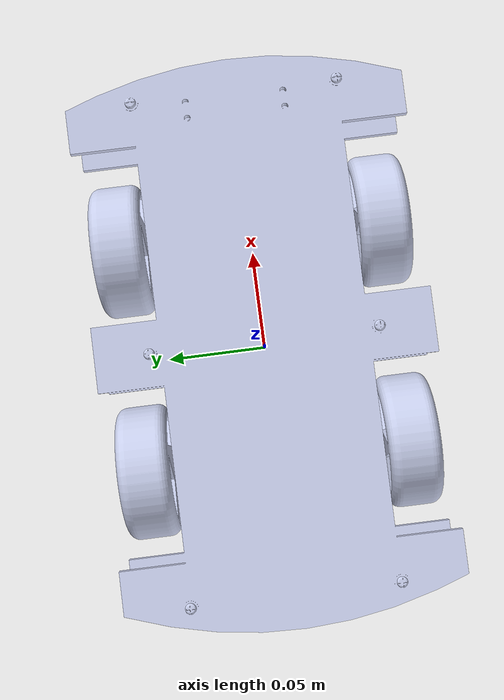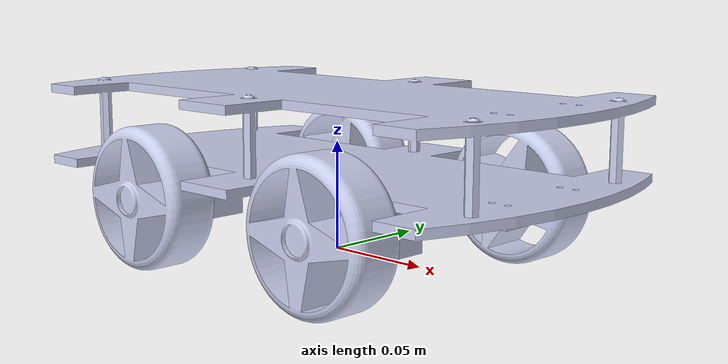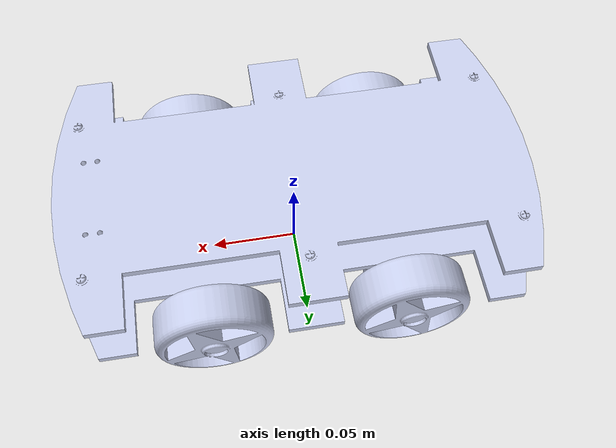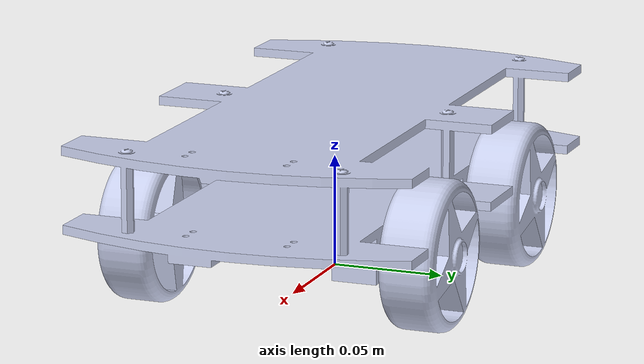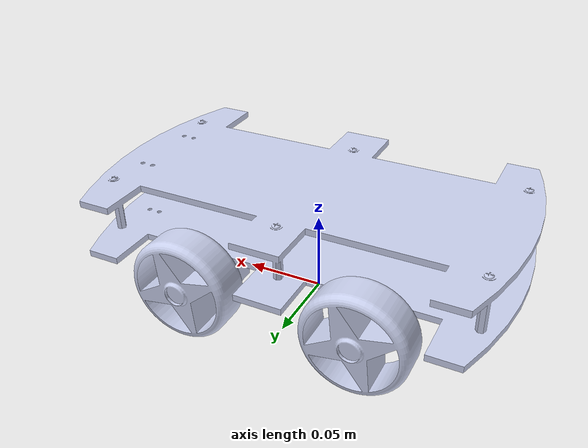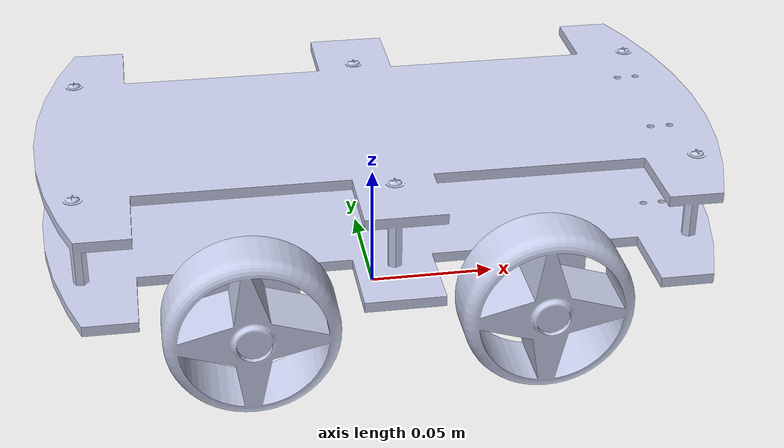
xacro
<?xml version="1.0"?>
<robot xmlns:xacro="http://www.ros.org/wiki/xacro" name="prymbot">
    <xacro:include filename="$(find prymbot_description)/urdf/prymbot.gazebo.xacro" />

<!-- A fictitious joint between robot and world 0325-->
  <link name="base_footprint">
  </link>

  <joint name="base_footprint_joint" type="fixed">
     <origin xyz="0 0 0.0355" rpy="0 0 0" />
     <parent link="base_footprint"/>
     <child link="base_link"/>
   </joint>

  <link
    name="base_link">
    <inertial>
      <origin
        xyz="3.5508E-05 5.9079E-08 0.0133"
        rpy="0 0 0" />
      <mass
        value="0.4" />
      <inertia
        ixx="0.00038538"
        ixy="-1.1812E-09"
        ixz="4.9094E-08"
        iyy="0.001533"
        iyz="-1.3901E-11"
        izz="0.0019021" />
    </inertial>
    <visual>
      <origin
        xyz="0 0 0"
        rpy="0 0 0" />
      <geometry>
        <mesh
          filename="package://prymbot_description/meshes/base_link.dae" />
      </geometry>
      <material
        name="black">
        <color
          rgba="0.79216 0.81961 0.93333 1" />
      </material>
    </visual>
    <collision>
      <origin
        xyz="0 0 0"
        rpy="0 0 0" />
      <geometry>
        <mesh
          filename="package://prymbot_description/meshes/base_link.STL" />
      </geometry>
    </collision>
  </link>
  <link
    name="front_left_wheel">
    <inertial>
      <origin
        xyz="0.00046378 -0.013212 0.00025812"
        rpy="0 0 0" />
      <mass
        value="0.047994" />
      <inertia
        ixx="1.563E-05"
        ixy="-1.5844E-08"
        ixz="-1.2492E-09"
        iyy="2.5045E-05"
        iyz="-8.8183E-09"
        izz="1.5589E-05" />
    </inertial>
    <visual>
      <origin
        xyz="0 0 0"
        rpy="0 0 0" />
      <geometry>
        <mesh
          filename="package://prymbot_description/meshes/front_left_wheel.dae" />
      </geometry>
      <material
        name="yellow">
        <color
          rgba="0.79216 0.81961 0.93333 1" />
      </material>
    </visual>
    <collision>
      <origin
        xyz="0 0 0"
        rpy="0 0 0" />
      <geometry>
        <mesh
          filename="package://prymbot_description/meshes/front_left_wheel.STL" />
      </geometry>
    </collision>
  </link>
  <joint
    name="front_left_joint"
    type="continuous">
    <origin
      xyz="0.055119 0.0765 -0.01"
      rpy="0 0 0" />
    <parent
      link="base_link" />
    <child
      link="front_left_wheel" />
    <axis
      xyz="0 1 0" />
    <limit
      effort="1"
      velocity="1" />
  </joint>
  <link
    name="rear_left_wheel">
    <inertial>
      <origin
        xyz="0.00046378 -0.013212 0.00025812"
        rpy="0 0 0" />
      <mass
        value="0.047994" />
      <inertia
        ixx="1.563E-05"
        ixy="-1.5844E-08"
        ixz="-1.2492E-09"
        iyy="2.5045E-05"
        iyz="-8.8183E-09"
        izz="1.5589E-05" />
    </inertial>
    <visual>
      <origin
        xyz="0 0 0"
        rpy="0 0 0" />
      <geometry>
        <mesh
          filename="package://prymbot_description/meshes/rear_left_wheel.dae" />
      </geometry>
      <material
        name="yellow">
        <color
          rgba="0.79216 0.81961 0.93333 1" />
      </material>
    </visual>
    <collision>
      <origin
        xyz="0 0 0"
        rpy="0 0 0" />
      <geometry>
        <mesh
          filename="package://prymbot_description/meshes/rear_left_wheel.STL" />
      </geometry>
    </collision>
  </link>
  <joint
    name="rear_left_joint"
    type="continuous">
    <origin
      xyz="-0.054881 0.0765 -0.01"
      rpy="0 0 0" />
    <parent
      link="base_link" />
    <child
      link="rear_left_wheel" />
    <axis
      xyz="0 1 0" />
    <limit
      effort="1"
      velocity="1" />
  </joint>
  <link
    name="rear_right_wheel">
    <inertial>
      <origin
        xyz="-0.00032618 0.013212 -0.00041872"
        rpy="0 0 0" />
      <mass
        value="0.047994" />
      <inertia
        ixx="1.5589E-05"
        ixy="-1.1143E-08"
        ixz="5.0772E-09"
        iyy="2.5045E-05"
        iyz="-1.4305E-08"
        izz="1.563E-05" />
    </inertial>
    <visual>
      <origin
        xyz="0 0 0"
        rpy="0 0 0" />
      <geometry>
        <mesh
          filename="package://prymbot_description/meshes/rear_right_wheel.dae" />
      </geometry>
      <material
        name="yellow">
        <color
          rgba="0.79216 0.81961 0.93333 1" />
      </material>
    </visual>
    <collision>
      <origin
        xyz="0 0 0"
        rpy="0 0 0" />
      <geometry>
        <mesh
          filename="package://prymbot_description/meshes/rear_right_wheel.STL" />
      </geometry>
    </collision>
  </link>
  <joint
    name="rear_right_joint"
    type="continuous">
    <origin
      xyz="-0.054881 -0.0765 -0.01"
      rpy="0 0 0" />
    <parent
      link="base_link" />
    <child
      link="rear_right_wheel" />
    <axis
      xyz="0 1 0" />
    <limit
      effort="1"
      velocity="1" />
  </joint>
  <link
    name="front_right_wheel">
    <inertial>
      <origin
        xyz="-0.00041566 0.013212 -0.00033008"
        rpy="0 0 0" />
      <mass
        value="0.047994" />
      <inertia
        ixx="1.5594E-05"
        ixy="-1.42E-08"
        ixz="1.3714E-08"
        iyy="2.5045E-05"
        iyz="-1.1276E-08"
        izz="1.5625E-05" />
    </inertial>
    <visual>
      <origin
        xyz="0 0 0"
        rpy="0 0 0" />
      <geometry>
        <mesh
          filename="package://prymbot_description/meshes/front_right_wheel.dae" />
      </geometry>
      <material
        name="yellow">
        <color
          rgba="0.79216 0.81961 0.93333 1" />
      </material>
    </visual>
    <collision>
      <origin
        xyz="0 0 0"
        rpy="0 0 0" />
      <geometry>
        <mesh
          filename="package://prymbot_description/meshes/front_right_wheel.STL" />
      </geometry>
    </collision>
  </link>
  <joint
    name="front_right_joint"
    type="continuous">
    <origin
      xyz="0.055119 -0.0765 -0.01"
      rpy="0 0 0" />
    <parent
      link="base_link" />
    <child
      link="front_right_wheel" />
    <axis
      xyz="0 1 0" />
    <limit
      effort="1"
      velocity="1" />
  </joint>
</robot>
